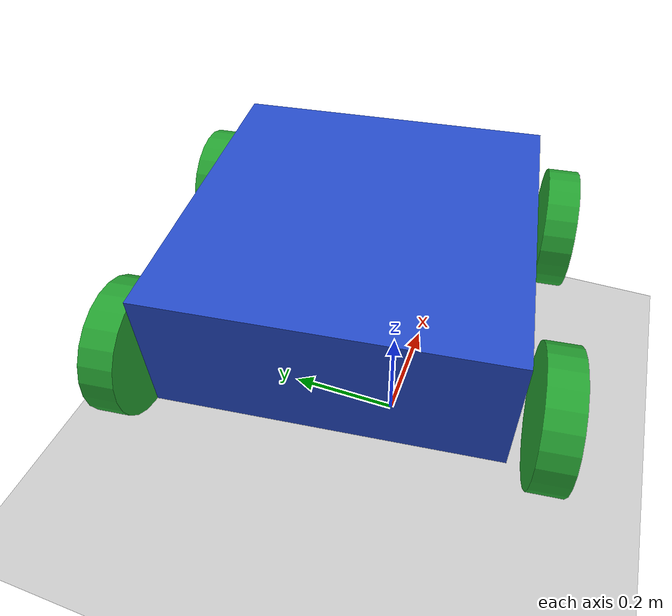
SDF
<sdf version="1.7">
 <world name="default">
  <light name="sun" type="directional">
   <pose>0 0 10 0 -0 0</pose>
   <diffuse>0.8 0.8 0.8 1</diffuse>
   <specular>0.2 0.2 0.2 1</specular>
   <attenuation>
    <range>1000</range>
    <constant>0.9</constant>
    <linear>0.01</linear>
    <quadratic>0.001</quadratic>
   </attenuation>
   <direction>-0.5 0.1 -0.9</direction>
   <spot><inner_angle>0</inner_angle><outer_angle>0</outer_angle><falloff>0</falloff></spot>
  </light>
  <model name="ground_plane">
   <static>1</static>
   <link name="link">
    <collision name="collision">
     <geometry><plane><normal>0 0 1</normal><size>100 100</size></plane></geometry>
     <surface><friction><ode><mu>100</mu><mu2>50</mu2></ode></friction></surface>
    </collision>
    <visual name="visual">
     <cast_shadows>0</cast_shadows>
     <geometry><plane><normal>0 0 1</normal><size>100 100</size></plane></geometry>
     <material>
      <script><uri>file://media/materials/scripts/gazebo.material</uri><name>Gazebo/Grey</name></script>
     </material>
    </visual>
   </link>
  </model>
  <gravity>0 0 -9.8</gravity>
  <magnetic_field>6e-06 2.3e-05 -4.2e-05</magnetic_field>
  <atmosphere type="adiabatic"/>
  <physics type="ode">
   <max_step_size>0.001</max_step_size>
   <real_time_factor>1</real_time_factor>
   <real_time_update_rate>1000</real_time_update_rate>
  </physics>
  <scene><ambient>0.4 0.4 0.4 1</ambient><background>0.7 0.7 0.7 1</background><shadows>1</shadows></scene>
  <audio><device>default</device></audio>
  <spherical_coordinates>
   <surface_model>EARTH_WGS84</surface_model>
   <latitude_deg>0</latitude_deg>
   <longitude_deg>0</longitude_deg>
   <elevation>0</elevation>
   <heading_deg>0</heading_deg>
  </spherical_coordinates>
  <model name="atom">
   <link name="robot_footprint">
    <inertial>
     <mass>15</mass>
     <inertia>
      <ixx>0.147117</ixx>
      <ixy>0</ixy>
      <ixz>0</ixz>
      <iyy>0.334951</iyy>
      <iyz>0</iyz>
      <izz>0.397834</izz>
     </inertia>
    </inertial>
    <collision name="robot_footprint_fixed_joint_lump__collision_collision">
     <pose>0 0 0.05 0 -0 0</pose>
     <geometry><box><size>0.5 0.5 0.2</size></box></geometry>
    </collision>
    <visual name="robot_footprint_fixed_joint_lump__chassis_visual_visual">
     <pose>0 0 0.05 0 -0 0</pose>
     <geometry><box><size>0.5 0.5 0.2</size></box></geometry>
     <material>
      <script><name>Gazebo/Blue</name><uri>file://media/materials/scripts/gazebo.material</uri></script>
     </material>
    </visual>
   </link>
   <joint name="left_wheel_hinge_back" type="revolute">
    <pose relative_to="robot_footprint">-0.2 0.3 0 0 -0 0</pose>
    <parent>robot_footprint</parent>
    <child>left_wheel_back</child>
    <axis>
     <xyz>0 1 0</xyz>
     <limit><effort>10000</effort><velocity>1000</velocity><lower>-1e+16</lower><upper>1e+16</upper></limit>
     <dynamics>
      <damping>1</damping>
      <friction>1</friction>
      <spring_reference>0</spring_reference>
      <spring_stiffness>0</spring_stiffness>
     </dynamics>
    </axis>
   </joint>
   <link name="left_wheel_back">
    <pose relative_to="left_wheel_hinge_back">0 0 0 0 -0 0</pose>
    <inertial>
     <pose>0 0 0 -0 1.5707 1.5707</pose>
     <mass>5</mass>
     <inertia><ixx>0.1</ixx><ixy>0</ixy><ixz>0</ixz><iyy>0.1</iyy><iyz>0</iyz><izz>0.1</izz></inertia>
    </inertial>
    <collision name="left_wheel_back_collision">
     <pose>0 0 0 1.57089 1.57079 -3.14159</pose>
     <geometry><cylinder><length>0.05</length><radius>0.1</radius></cylinder></geometry>
     <surface>
      <contact><ode><kp>1e+06</kp><kd>100</kd><max_vel>1</max_vel><min_depth>0</min_depth></ode></contact>
      <friction><ode><mu>1</mu><mu2>1</mu2></ode></friction>
     </surface>
    </collision>
    <visual name="left_wheel_back_visual">
     <pose>0 0 0 1.57089 1.57079 -3.14159</pose>
     <geometry><cylinder><length>0.05</length><radius>0.1</radius></cylinder></geometry>
     <material>
      <script><name>Gazebo/Green</name><uri>file://media/materials/scripts/gazebo.material</uri></script>
     </material>
    </visual>
   </link>
   <joint name="left_wheel_hinge_front" type="revolute">
    <pose relative_to="robot_footprint">0.2 0.3 0 0 -0 0</pose>
    <parent>robot_footprint</parent>
    <child>left_wheel_front</child>
    <axis>
     <xyz>0 1 0</xyz>
     <limit><effort>10000</effort><velocity>1000</velocity><lower>-1e+16</lower><upper>1e+16</upper></limit>
     <dynamics>
      <damping>1</damping>
      <friction>1</friction>
      <spring_reference>0</spring_reference>
      <spring_stiffness>0</spring_stiffness>
     </dynamics>
    </axis>
   </joint>
   <link name="left_wheel_front">
    <pose relative_to="left_wheel_hinge_front">0 0 0 0 -0 0</pose>
    <inertial>
     <pose>0 0 0 -0 1.5707 1.5707</pose>
     <mass>5</mass>
     <inertia><ixx>0.1</ixx><ixy>0</ixy><ixz>0</ixz><iyy>0.1</iyy><iyz>0</iyz><izz>0.1</izz></inertia>
    </inertial>
    <collision name="left_wheel_front_collision">
     <pose>0 0 0 1.57089 1.57079 -3.14159</pose>
     <geometry><cylinder><length>0.05</length><radius>0.1</radius></cylinder></geometry>
     <surface>
      <contact><ode><kp>1e+06</kp><kd>100</kd><max_vel>1</max_vel><min_depth>0</min_depth></ode></contact>
      <friction><ode><mu>1</mu><mu2>1</mu2></ode></friction>
     </surface>
    </collision>
    <visual name="left_wheel_front_visual">
     <pose>0 0 0 1.57089 1.57079 -3.14159</pose>
     <geometry><cylinder><length>0.05</length><radius>0.1</radius></cylinder></geometry>
     <material>
      <script><name>Gazebo/Green</name><uri>file://media/materials/scripts/gazebo.material</uri></script>
     </material>
    </visual>
   </link>
   <joint name="right_wheel_hinge_back" type="revolute">
    <pose relative_to="robot_footprint">-0.2 -0.3 0 0 -0 0</pose>
    <parent>robot_footprint</parent>
    <child>right_wheel_back</child>
    <axis>
     <xyz>0 1 0</xyz>
     <limit><effort>10000</effort><velocity>1000</velocity><lower>-1e+16</lower><upper>1e+16</upper></limit>
     <dynamics>
      <damping>1</damping>
      <friction>1</friction>
      <spring_reference>0</spring_reference>
      <spring_stiffness>0</spring_stiffness>
     </dynamics>
    </axis>
   </joint>
   <link name="right_wheel_back">
    <pose relative_to="right_wheel_hinge_back">0 0 0 0 -0 0</pose>
    <inertial>
     <pose>0 0 0 -0 1.5707 1.5707</pose>
     <mass>5</mass>
     <inertia><ixx>0.1</ixx><ixy>0</ixy><ixz>0</ixz><iyy>0.1</iyy><iyz>0</iyz><izz>0.1</izz></inertia>
    </inertial>
    <collision name="right_wheel_back_collision">
     <pose>0 0 0 1.57089 1.57079 -3.14159</pose>
     <geometry><cylinder><length>0.05</length><radius>0.1</radius></cylinder></geometry>
     <surface>
      <contact><ode><kp>1e+06</kp><kd>100</kd><max_vel>1</max_vel><min_depth>0</min_depth></ode></contact>
      <friction><ode><mu>1</mu><mu2>1</mu2></ode></friction>
     </surface>
    </collision>
    <visual name="right_wheel_back_visual">
     <pose>0 0 0 1.57089 1.57079 -3.14159</pose>
     <geometry><cylinder><length>0.05</length><radius>0.1</radius></cylinder></geometry>
     <material>
      <script><name>Gazebo/Green</name><uri>file://media/materials/scripts/gazebo.material</uri></script>
     </material>
    </visual>
   </link>
   <joint name="right_wheel_hinge_front" type="revolute">
    <pose relative_to="robot_footprint">0.2 -0.3 0 0 -0 0</pose>
    <parent>robot_footprint</parent>
    <child>right_wheel_front</child>
    <axis>
     <xyz>0 1 0</xyz>
     <limit><effort>10000</effort><velocity>1000</velocity><lower>-1e+16</lower><upper>1e+16</upper></limit>
     <dynamics>
      <damping>1</damping>
      <friction>1</friction>
      <spring_reference>0</spring_reference>
      <spring_stiffness>0</spring_stiffness>
     </dynamics>
    </axis>
   </joint>
   <link name="right_wheel_front">
    <pose relative_to="right_wheel_hinge_front">0 0 0 0 -0 0</pose>
    <inertial>
     <pose>0 0 0 -0 1.5707 1.5707</pose>
     <mass>5</mass>
     <inertia><ixx>0.1</ixx><ixy>0</ixy><ixz>0</ixz><iyy>0.1</iyy><iyz>0</iyz><izz>0.1</izz></inertia>
    </inertial>
    <collision name="right_wheel_front_collision">
     <pose>0 0 0 1.57089 1.57079 -3.14159</pose>
     <geometry><cylinder><length>0.05</length><radius>0.1</radius></cylinder></geometry>
     <surface>
      <contact><ode><kp>1e+06</kp><kd>100</kd><max_vel>1</max_vel><min_depth>0</min_depth></ode></contact>
      <friction><ode><mu>1</mu><mu2>1</mu2></ode></friction>
     </surface>
    </collision>
    <visual name="right_wheel_front_visual">
     <pose>0 0 0 1.57089 1.57079 -3.14159</pose>
     <geometry><cylinder><length>0.05</length><radius>0.1</radius></cylinder></geometry>
     <material>
      <script><name>Gazebo/Green</name><uri>file://media/materials/scripts/gazebo.material</uri></script>
     </material>
    </visual>
   </link>
   <static>0</static>
   <plugin name="front_wheel" filename="libgazebo_ros_diff_drive.so">
    <left_joint>left_wheel_hinge_front</left_joint>
    <right_joint>right_wheel_hinge_front</right_joint>
    <wheel_separation>0.4</wheel_separation>
    <wheel_diameter>0.2</wheel_diameter>
    <max_wheel_torque>200</max_wheel_torque>
    <max_wheel_acceleration>10.0</max_wheel_acceleration>
    <odometry_frame>odom</odometry_frame>
    <robot_base_frame>base_link</robot_base_frame>
    <publish_odom>1</publish_odom>
    <publish_odom_tf>1</publish_odom_tf>
    <publish_wheel_tf>1</publish_wheel_tf>
   </plugin>
   <plugin name="back_wheel" filename="libgazebo_ros_diff_drive.so">
    <left_joint>left_wheel_hinge_back</left_joint>
    <right_joint>right_wheel_hinge_back</right_joint>
    <wheel_separation>0.4</wheel_separation>
    <wheel_diameter>0.2</wheel_diameter>
    <max_wheel_torque>200</max_wheel_torque>
    <max_wheel_acceleration>10.0</max_wheel_acceleration>
    <odometry_frame>odom</odometry_frame>
    <robot_base_frame>base_link</robot_base_frame>
    <publish_odom>1</publish_odom>
    <publish_odom_tf>1</publish_odom_tf>
    <publish_wheel_tf>1</publish_wheel_tf>
   </plugin>
   <pose>-0.017579 0.054143 0.349534 -9.2e-05 0.000292 0.126141</pose>
  </model>
 </world>
</sdf>
